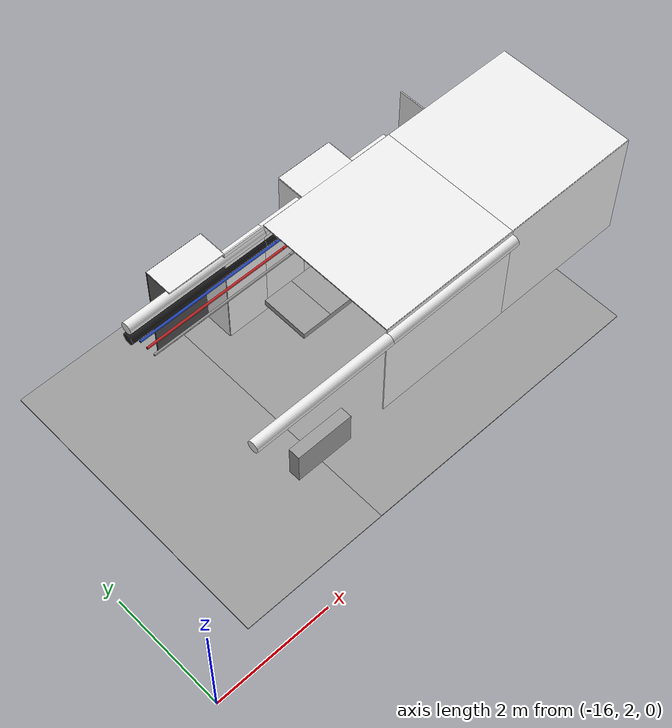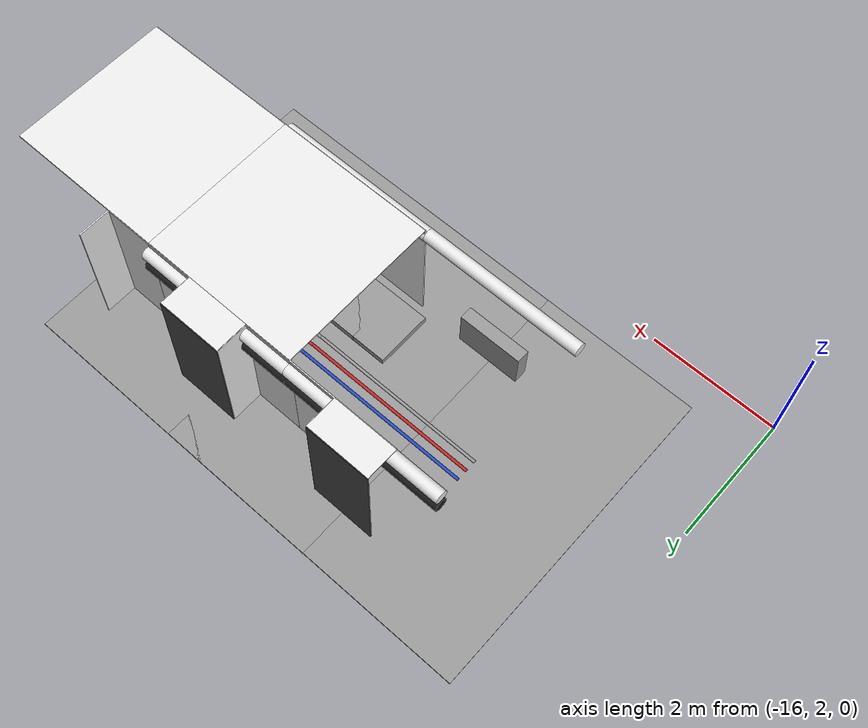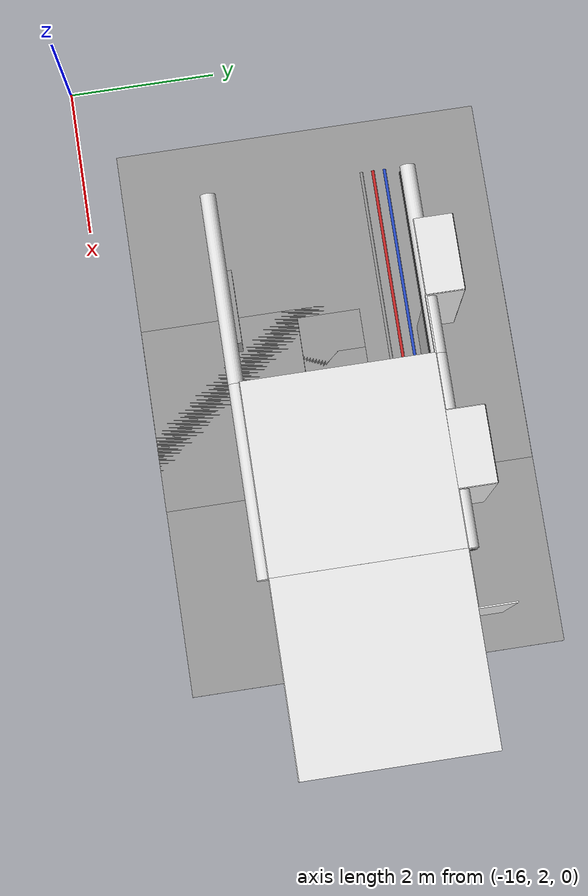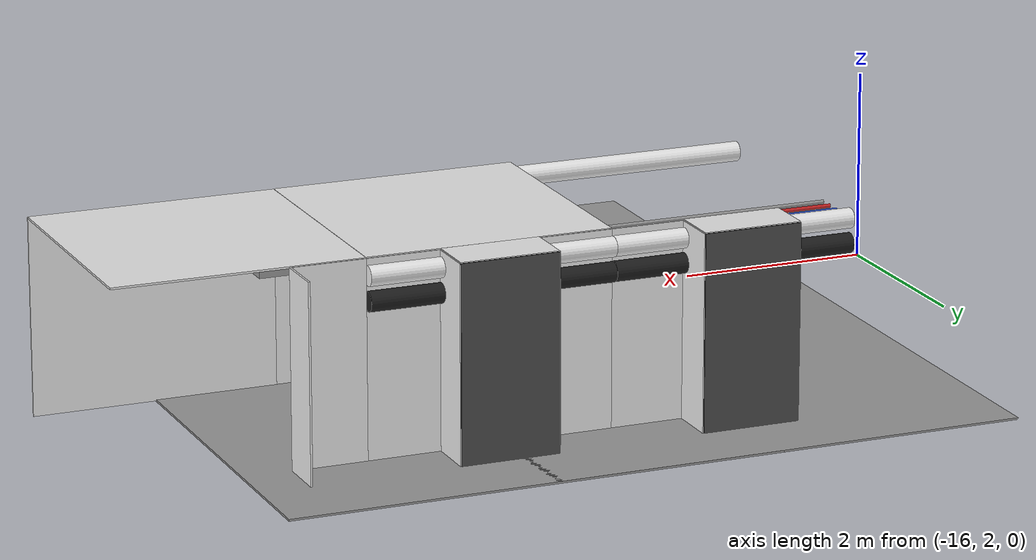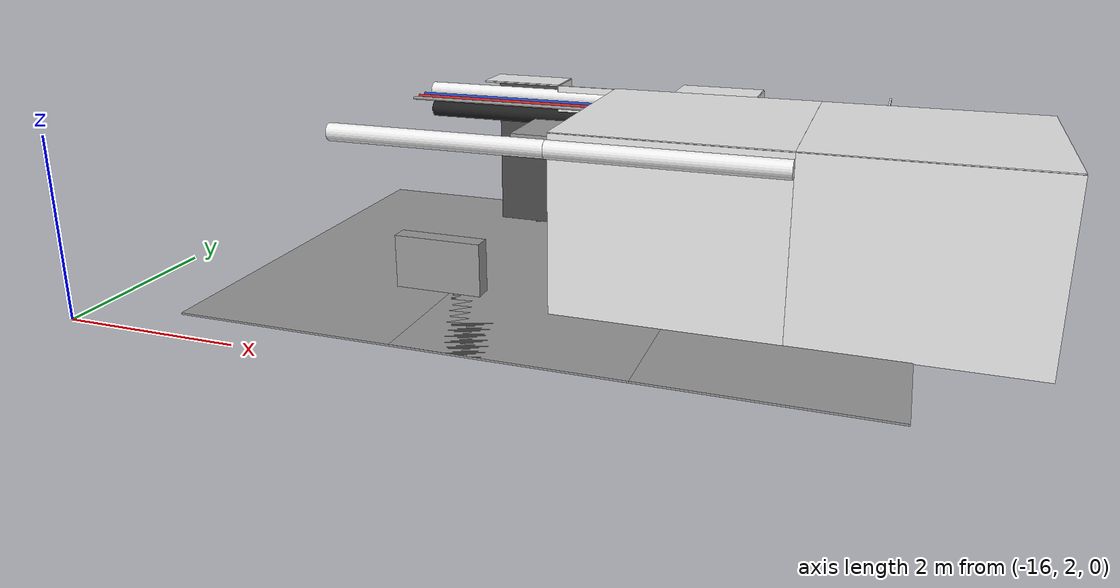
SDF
<sdf version="1.6">
 <world name="default">
  <model name="wall_left_-3_2_0_1">
   <static>1</static>
   <pose>-7.5 3.75 1.0 0.0 0.0 3.14</pose>
   <link name="link">
    <collision name="collision"><geometry><box><size>2.5 0.02 2.0</size></box></geometry></collision>
    <visual name="visual">
     <material>
      <script><name>Gazebo/White</name><uri>file://media/materials/scripts/gazebo.material</uri></script>
     </material>
     <geometry><box><size>2.5 0.02 2.0</size></box></geometry>
    </visual>
   </link>
  </model>
  <model name="wall_top_-3_2_0_1">
   <static>1</static>
   <pose>-7.5 5.0 2.0 1.57 0.0 1.57</pose>
   <link name="link">
    <collision name="collision"><geometry><box><size>2.5 0.02 2.5</size></box></geometry></collision>
    <visual name="visual">
     <material>
      <script><name>Gazebo/White</name><uri>file://media/materials/scripts/gazebo.material</uri></script>
     </material>
     <geometry><box><size>2.5 0.02 2.5</size></box></geometry>
    </visual>
   </link>
  </model>
  <model name="ceiling_1_-3_2_2_1">
   <pose>-8.5 5.0 1.7 0.0 0.0 1.57</pose>
   <link name="link_1">
    <visual name="visual">
     <geometry><box><size>0.8 1 0.1</size></box></geometry>
     <material>
      <script><uri>file://media/materials/scripts/gazebo.material</uri><name>Gazebo/Grey</name></script>
     </material>
    </visual>
    <collision name="collision"><geometry><box><size>0.8 1 0.1</size></box></geometry></collision>
   </link>
   <static>1</static>
  </model>
  <model name="wall_right_front_left_-3_2_0_1">
   <static>1</static>
   <pose>-8.375 6.25 1.0 0.0 0.0 3.14</pose>
   <link name="link">
    <collision name="collision"><geometry><box><size>0.75 0.02 2.0</size></box></geometry></collision>
    <visual name="visual">
     <material>
      <script><name>Gazebo/White</name><uri>file://media/materials/scripts/gazebo.material</uri></script>
     </material>
     <geometry><box><size>0.75 0.02 2.0</size></box></geometry>
    </visual>
   </link>
  </model>
  <model name="wall_right_inside_left_-3_2_0_1">
   <static>1</static>
   <pose>-8.0 6.5 1.0 0.0 0.0 1.57</pose>
   <link name="link">
    <collision name="collision"><geometry><box><size>0.5 0.02 2</size></box></geometry></collision>
    <visual name="visual">
     <material>
      <script><name>Gazebo/White</name><uri>file://media/materials/scripts/gazebo.material</uri></script>
     </material>
     <geometry><box><size>0.5 0.02 2</size></box></geometry>
    </visual>
   </link>
  </model>
  <model name="wall_left_-4_2_0_1">
   <static>1</static>
   <pose>-10.0 3.75 1.0 0.0 0.0 3.14</pose>
   <link name="link">
    <collision name="collision"><geometry><box><size>2.5 0.02 2.0</size></box></geometry></collision>
    <visual name="visual">
     <material>
      <script><name>Gazebo/White</name><uri>file://media/materials/scripts/gazebo.material</uri></script>
     </material>
     <geometry><box><size>2.5 0.02 2.0</size></box></geometry>
    </visual>
   </link>
  </model>
  <model name="wall_top_-4_2_0_1">
   <static>1</static>
   <pose>-10.0 5.0 2.0 1.57 0.0 1.57</pose>
   <link name="link">
    <collision name="collision"><geometry><box><size>2.5 0.02 2.5</size></box></geometry></collision>
    <visual name="visual">
     <material>
      <script><name>Gazebo/White</name><uri>file://media/materials/scripts/gazebo.material</uri></script>
     </material>
     <geometry><box><size>2.5 0.02 2.5</size></box></geometry>
    </visual>
   </link>
  </model>
  <model name="ceiling_1_-4_2_0_1">
   <pose>-10.0 5.0 1.7 0.0 0.0 1.57</pose>
   <link name="link_1">
    <visual name="visual">
     <geometry><box><size>0.8 1 0.1</size></box></geometry>
     <material>
      <script><uri>file://media/materials/scripts/gazebo.material</uri><name>Gazebo/Grey</name></script>
     </material>
    </visual>
    <collision name="collision"><geometry><box><size>0.8 1 0.1</size></box></geometry></collision>
   </link>
   <static>1</static>
  </model>
  <model name="ceiling_1_-4_2_1_1">
   <pose>-9.0 5.0 1.7 0.0 0.0 1.57</pose>
   <link name="link_1">
    <visual name="visual">
     <geometry><box><size>0.8 1 0.1</size></box></geometry>
     <material>
      <script><uri>file://media/materials/scripts/gazebo.material</uri><name>Gazebo/Grey</name></script>
     </material>
    </visual>
    <collision name="collision"><geometry><box><size>0.8 1 0.1</size></box></geometry></collision>
   </link>
   <static>1</static>
  </model>
  <model name="ceiling_1_-4_2_2_1">
   <pose>-11.0 5.0 1.7 0.0 0.0 1.57</pose>
   <link name="link_1">
    <visual name="visual">
     <geometry><box><size>0.8 1 0.1</size></box></geometry>
     <material>
      <script><uri>file://media/materials/scripts/gazebo.material</uri><name>Gazebo/Grey</name></script>
     </material>
    </visual>
    <collision name="collision"><geometry><box><size>0.8 1 0.1</size></box></geometry></collision>
   </link>
   <static>1</static>
  </model>
  <model name="white_pipe_left_-4_2_0_1">
   <static>1</static>
   <pose>-10.0 5.0 1.84 0.0 0.0 1.57</pose>
   <link name="link_0">
    <visual name="visual">
     <pose>-1.3 0 0 1.57 0 0</pose>
     <geometry><cylinder><radius>0.1</radius><length>2.5</length></cylinder></geometry>
     <material>
      <script><uri>file://media/materials/scripts/gazebo.material</uri><name>Gazebo/White</name></script>
     </material>
    </visual>
    <collision name="collision">
     <pose>-1.3 0 0 1.57 0 0</pose>
     <geometry><cylinder><radius>0.1</radius><length>2.5</length></cylinder></geometry>
    </collision>
   </link>
  </model>
  <model name="white_pipe_right_-4_2_0_1">
   <static>1</static>
   <pose>-10.0 5.0 1.84 0.0 0.0 1.57</pose>
   <link name="link_0">
    <visual name="visual">
     <pose>1.3 0 0 1.57 0 0</pose>
     <geometry><cylinder><radius>0.1</radius><length>2.5</length></cylinder></geometry>
     <material>
      <script><uri>file://media/materials/scripts/gazebo.material</uri><name>Gazebo/White</name></script>
     </material>
    </visual>
    <collision name="collision">
     <pose>1.3 0 0 1.57 0 0</pose>
     <geometry><cylinder><radius>0.1</radius><length>2.5</length></cylinder></geometry>
    </collision>
   </link>
  </model>
  <model name="black_pipe_right_-4_2_0_1">
   <static>1</static>
   <pose>-10.0 5.0 1.84 0.0 0.0 1.57</pose>
   <link name="link_0">
    <visual name="visual">
     <pose>1.3 0 -0.25 1.57 0 0</pose>
     <geometry><cylinder><radius>0.1</radius><length>2.5</length></cylinder></geometry>
     <material>
      <script><uri>file://media/materials/scripts/gazebo.material</uri><name>Gazebo/Black</name></script>
     </material>
    </visual>
    <collision name="collision">
     <pose>1.3 0 -0.25 1.57 0 0</pose>
     <geometry><cylinder><radius>0.1</radius><length>2.5</length></cylinder></geometry>
    </collision>
   </link>
  </model>
  <model name="grey_pipe_right_-4_2_0_1">
   <static>1</static>
   <pose>-10.0 5.0 1.84 0.0 0.0 1.57</pose>
   <link name="link_0">
    <visual name="visual">
     <pose>0.7 0 0 1.57 0 0</pose>
     <geometry><cylinder><radius>0.02</radius><length>2.5</length></cylinder></geometry>
     <material>
      <script><uri>file://media/materials/scripts/gazebo.material</uri><name>Gazebo/Grey</name></script>
     </material>
    </visual>
    <collision name="collision">
     <pose>0.7 0 0 1.57 0 0</pose>
     <geometry><cylinder><radius>0.02</radius><length>2.5</length></cylinder></geometry>
    </collision>
   </link>
  </model>
  <model name="red_pipe_right_-4_2_0_1">
   <static>1</static>
   <pose>-10.0 5.0 1.84 0.0 0.0 1.57</pose>
   <link name="link_0">
    <visual name="visual">
     <pose>0.85 0 0 1.57 0 0</pose>
     <geometry><cylinder><radius>0.02</radius><length>2.5</length></cylinder></geometry>
     <material>
      <script><uri>file://media/materials/scripts/gazebo.material</uri><name>Gazebo/Red</name></script>
     </material>
    </visual>
    <collision name="collision">
     <pose>0.85 0 0 1.57 0 0</pose>
     <geometry><cylinder><radius>0.02</radius><length>2.5</length></cylinder></geometry>
    </collision>
   </link>
  </model>
  <model name="blue_pipe_right_-4_2_0_1">
   <static>1</static>
   <pose>-10.0 5.0 1.84 0.0 0.0 1.57</pose>
   <link name="link_0">
    <visual name="visual">
     <pose>1 0 0 1.57 0 0</pose>
     <geometry><cylinder><radius>0.02</radius><length>2.5</length></cylinder></geometry>
     <material>
      <script><uri>file://media/materials/scripts/gazebo.material</uri><name>Gazebo/Blue</name></script>
     </material>
    </visual>
    <collision name="collision">
     <pose>1 0 0 1.57 0 0</pose>
     <geometry><cylinder><radius>0.02</radius><length>2.5</length></cylinder></geometry>
    </collision>
   </link>
  </model>
  <model name="wall_right_front_left_-4_2_0_1">
   <static>1</static>
   <pose>-10.875 6.25 1.0 0.0 0.0 3.14</pose>
   <link name="link">
    <collision name="collision"><geometry><box><size>0.75 0.02 2.0</size></box></geometry></collision>
    <visual name="visual">
     <material>
      <script><name>Gazebo/White</name><uri>file://media/materials/scripts/gazebo.material</uri></script>
     </material>
     <geometry><box><size>0.75 0.02 2.0</size></box></geometry>
    </visual>
   </link>
  </model>
  <model name="wall_right_front_right_-4_2_0_1">
   <static>1</static>
   <pose>-9.125 6.25 1.0 0.0 0.0 3.14</pose>
   <link name="link">
    <collision name="collision"><geometry><box><size>0.75 0.02 2.0</size></box></geometry></collision>
    <visual name="visual">
     <material>
      <script><name>Gazebo/White</name><uri>file://media/materials/scripts/gazebo.material</uri></script>
     </material>
     <geometry><box><size>0.75 0.02 2.0</size></box></geometry>
    </visual>
   </link>
  </model>
  <model name="wall_right_front_up_-4_2_0_1">
   <static>1</static>
   <pose>-10.0 6.25 2.0 0.0 0.0 3.14</pose>
   <link name="link">
    <collision name="collision"><geometry><box><size>1.0 0.02 0.001</size></box></geometry></collision>
    <visual name="visual">
     <material>
      <script><name>Gazebo/White</name><uri>file://media/materials/scripts/gazebo.material</uri></script>
     </material>
     <geometry><box><size>1.0 0.02 0.001</size></box></geometry>
    </visual>
   </link>
  </model>
  <model name="wall_right_inside_back_-4_2_0_1">
   <static>1</static>
   <pose>-10.0 6.75 1.0 0.0 0.0 3.14</pose>
   <link name="link">
    <collision name="collision"><geometry><box><size>1 0.02 2</size></box></geometry></collision>
    <visual name="visual">
     <material>
      <script><name>Gazebo/DarkGrey</name><uri>file://media/materials/scripts/gazebo.material</uri></script>
     </material>
     <geometry><box><size>1 0.02 2</size></box></geometry>
    </visual>
   </link>
  </model>
  <model name="wall_right_inside_left_-4_2_0_1">
   <static>1</static>
   <pose>-10.5 6.5 1.0 0.0 0.0 1.57</pose>
   <link name="link">
    <collision name="collision"><geometry><box><size>0.5 0.02 2</size></box></geometry></collision>
    <visual name="visual">
     <material>
      <script><name>Gazebo/White</name><uri>file://media/materials/scripts/gazebo.material</uri></script>
     </material>
     <geometry><box><size>0.5 0.02 2</size></box></geometry>
    </visual>
   </link>
  </model>
  <model name="wall_right_inside_right_-4_2_0_1">
   <static>1</static>
   <pose>-9.5 6.5 1.0 0.0 0.0 1.57</pose>
   <link name="link">
    <collision name="collision"><geometry><box><size>0.5 0.02 2</size></box></geometry></collision>
    <visual name="visual">
     <material>
      <script><name>Gazebo/White</name><uri>file://media/materials/scripts/gazebo.material</uri></script>
     </material>
     <geometry><box><size>0.5 0.02 2</size></box></geometry>
    </visual>
   </link>
  </model>
  <model name="wall_right_inside_top_-4_2_0_1">
   <static>1</static>
   <pose>-10.0 6.5 2.0 1.57 0.0 3.14</pose>
   <link name="link">
    <collision name="collision"><geometry><box><size>1 0.02 0.5</size></box></geometry></collision>
    <visual name="visual">
     <material>
      <script><name>Gazebo/White</name><uri>file://media/materials/scripts/gazebo.material</uri></script>
     </material>
     <geometry><box><size>1 0.02 0.5</size></box></geometry>
    </visual>
   </link>
  </model>
  <model name="wall_bottom_-4_2_0_1">
   <static>1</static>
   <pose>-10.0 5.0 0.0 0.0 0.0 1.57</pose>
   <link name="link">
    <collision name="collision"><geometry><box><size>5.0 5.0 0.02</size></box></geometry></collision>
    <visual name="visual">
     <material>
      <script><name>Gazebo/Grey</name><uri>file://media/materials/scripts/gazebo.material</uri></script>
     </material>
     <geometry><box><size>5.0 5.0 0.02</size></box></geometry>
    </visual>
   </link>
  </model>
  <model name="ceiling_1_-5_2_1_1">
   <pose>-11.5 5.0 1.7 0.0 0.0 1.57</pose>
   <link name="link_1">
    <visual name="visual">
     <geometry><box><size>0.8 1 0.1</size></box></geometry>
     <material>
      <script><uri>file://media/materials/scripts/gazebo.material</uri><name>Gazebo/Grey</name></script>
     </material>
    </visual>
    <collision name="collision"><geometry><box><size>0.8 1 0.1</size></box></geometry></collision>
   </link>
   <static>1</static>
  </model>
  <model name="white_pipe_left_-5_2_0_1">
   <static>1</static>
   <pose>-12.5 5.0 1.84 0.0 0.0 1.57</pose>
   <link name="link_0">
    <visual name="visual">
     <pose>-1.3 0 0 1.57 0 0</pose>
     <geometry><cylinder><radius>0.1</radius><length>2.5</length></cylinder></geometry>
     <material>
      <script><uri>file://media/materials/scripts/gazebo.material</uri><name>Gazebo/White</name></script>
     </material>
    </visual>
    <collision name="collision">
     <pose>-1.3 0 0 1.57 0 0</pose>
     <geometry><cylinder><radius>0.1</radius><length>2.5</length></cylinder></geometry>
    </collision>
   </link>
  </model>
  <model name="white_pipe_right_-5_2_0_1">
   <static>1</static>
   <pose>-12.5 5.0 1.84 0.0 0.0 1.57</pose>
   <link name="link_0">
    <visual name="visual">
     <pose>1.3 0 0 1.57 0 0</pose>
     <geometry><cylinder><radius>0.1</radius><length>2.5</length></cylinder></geometry>
     <material>
      <script><uri>file://media/materials/scripts/gazebo.material</uri><name>Gazebo/White</name></script>
     </material>
    </visual>
    <collision name="collision">
     <pose>1.3 0 0 1.57 0 0</pose>
     <geometry><cylinder><radius>0.1</radius><length>2.5</length></cylinder></geometry>
    </collision>
   </link>
  </model>
  <model name="black_pipe_right_-5_2_0_1">
   <static>1</static>
   <pose>-12.5 5.0 1.84 0.0 0.0 1.57</pose>
   <link name="link_0">
    <visual name="visual">
     <pose>1.3 0 -0.25 1.57 0 0</pose>
     <geometry><cylinder><radius>0.1</radius><length>2.5</length></cylinder></geometry>
     <material>
      <script><uri>file://media/materials/scripts/gazebo.material</uri><name>Gazebo/Black</name></script>
     </material>
    </visual>
    <collision name="collision">
     <pose>1.3 0 -0.25 1.57 0 0</pose>
     <geometry><cylinder><radius>0.1</radius><length>2.5</length></cylinder></geometry>
    </collision>
   </link>
  </model>
  <model name="grey_pipe_right_-5_2_0_1">
   <static>1</static>
   <pose>-12.5 5.0 1.84 0.0 0.0 1.57</pose>
   <link name="link_0">
    <visual name="visual">
     <pose>0.7 0 0 1.57 0 0</pose>
     <geometry><cylinder><radius>0.02</radius><length>2.5</length></cylinder></geometry>
     <material>
      <script><uri>file://media/materials/scripts/gazebo.material</uri><name>Gazebo/Grey</name></script>
     </material>
    </visual>
    <collision name="collision">
     <pose>0.7 0 0 1.57 0 0</pose>
     <geometry><cylinder><radius>0.02</radius><length>2.5</length></cylinder></geometry>
    </collision>
   </link>
  </model>
  <model name="red_pipe_right_-5_2_0_1">
   <static>1</static>
   <pose>-12.5 5.0 1.84 0.0 0.0 1.57</pose>
   <link name="link_0">
    <visual name="visual">
     <pose>0.85 0 0 1.57 0 0</pose>
     <geometry><cylinder><radius>0.02</radius><length>2.5</length></cylinder></geometry>
     <material>
      <script><uri>file://media/materials/scripts/gazebo.material</uri><name>Gazebo/Red</name></script>
     </material>
    </visual>
    <collision name="collision">
     <pose>0.85 0 0 1.57 0 0</pose>
     <geometry><cylinder><radius>0.02</radius><length>2.5</length></cylinder></geometry>
    </collision>
   </link>
  </model>
  <model name="blue_pipe_right_-5_2_0_1">
   <static>1</static>
   <pose>-12.5 5.0 1.84 0.0 0.0 1.57</pose>
   <link name="link_0">
    <visual name="visual">
     <pose>1 0 0 1.57 0 0</pose>
     <geometry><cylinder><radius>0.02</radius><length>2.5</length></cylinder></geometry>
     <material>
      <script><uri>file://media/materials/scripts/gazebo.material</uri><name>Gazebo/Blue</name></script>
     </material>
    </visual>
    <collision name="collision">
     <pose>1 0 0 1.57 0 0</pose>
     <geometry><cylinder><radius>0.02</radius><length>2.5</length></cylinder></geometry>
    </collision>
   </link>
  </model>
  <model name="wall_bottom_-5_2_0_1">
   <static>1</static>
   <pose>-12.5 5.0 0.0 0.0 0.0 1.57</pose>
   <link name="link">
    <collision name="collision"><geometry><box><size>5.0 5.0 0.02</size></box></geometry></collision>
    <visual name="visual">
     <material>
      <script><name>Gazebo/Grey</name><uri>file://media/materials/scripts/gazebo.material</uri></script>
     </material>
     <geometry><box><size>5.0 5.0 0.02</size></box></geometry>
    </visual>
   </link>
  </model>
  <model name="wall_right_front_right_-5_2_0_1">
   <static>1</static>
   <pose>-11.625 6.25 1.0 0.0 0.0 3.14</pose>
   <link name="link">
    <collision name="collision"><geometry><box><size>0.75 0.02 2.0</size></box></geometry></collision>
    <visual name="visual">
     <material>
      <script><name>Gazebo/White</name><uri>file://media/materials/scripts/gazebo.material</uri></script>
     </material>
     <geometry><box><size>0.75 0.02 2.0</size></box></geometry>
    </visual>
   </link>
  </model>
  <model name="wall_right_front_up_-5_2_0_1">
   <static>1</static>
   <pose>-12.5 6.25 2.0 0.0 0.0 3.14</pose>
   <link name="link">
    <collision name="collision"><geometry><box><size>1.0 0.02 0.001</size></box></geometry></collision>
    <visual name="visual">
     <material>
      <script><name>Gazebo/White</name><uri>file://media/materials/scripts/gazebo.material</uri></script>
     </material>
     <geometry><box><size>1.0 0.02 0.001</size></box></geometry>
    </visual>
   </link>
  </model>
  <model name="wall_right_inside_back_-5_2_0_1">
   <static>1</static>
   <pose>-12.5 6.75 1.0 0.0 0.0 3.14</pose>
   <link name="link">
    <collision name="collision"><geometry><box><size>1 0.02 2</size></box></geometry></collision>
    <visual name="visual">
     <material>
      <script><name>Gazebo/DarkGrey</name><uri>file://media/materials/scripts/gazebo.material</uri></script>
     </material>
     <geometry><box><size>1 0.02 2</size></box></geometry>
    </visual>
   </link>
  </model>
  <model name="wall_right_inside_right_-5_2_0_1">
   <static>1</static>
   <pose>-12.0 6.5 1.0 0.0 0.0 1.57</pose>
   <link name="link">
    <collision name="collision"><geometry><box><size>0.5 0.02 2</size></box></geometry></collision>
    <visual name="visual">
     <material>
      <script><name>Gazebo/White</name><uri>file://media/materials/scripts/gazebo.material</uri></script>
     </material>
     <geometry><box><size>0.5 0.02 2</size></box></geometry>
    </visual>
   </link>
  </model>
  <model name="wall_right_inside_top_-5_2_0_1">
   <static>1</static>
   <pose>-12.5 6.5 2.0 1.57 0.0 3.14</pose>
   <link name="link">
    <collision name="collision"><geometry><box><size>1 0.02 0.5</size></box></geometry></collision>
    <visual name="visual">
     <material>
      <script><name>Gazebo/White</name><uri>file://media/materials/scripts/gazebo.material</uri></script>
     </material>
     <geometry><box><size>1 0.02 0.5</size></box></geometry>
    </visual>
   </link>
  </model>
  <model name="panel_-5_2_0_1">
   <static>1</static>
   <pose>-12.5 3.75 0.44 0.0 0.0 1.57</pose>
   <link name="link">
    <collision name="collision"><geometry><box><size>0.2 1 0.6</size></box></geometry></collision>
    <visual name="visual">
     <material>
      <script><name>Gazebo/Grey</name><uri>file://media/materials/scripts/gazebo.material</uri></script>
     </material>
     <geometry><box><size>0.2 1 0.6</size></box></geometry>
    </visual>
   </link>
  </model>
 </world>
</sdf>
